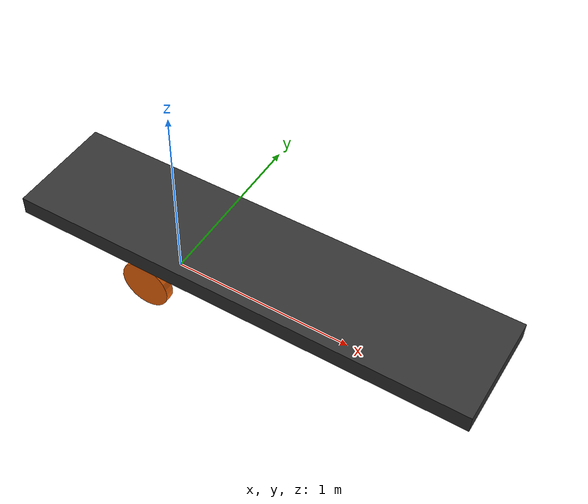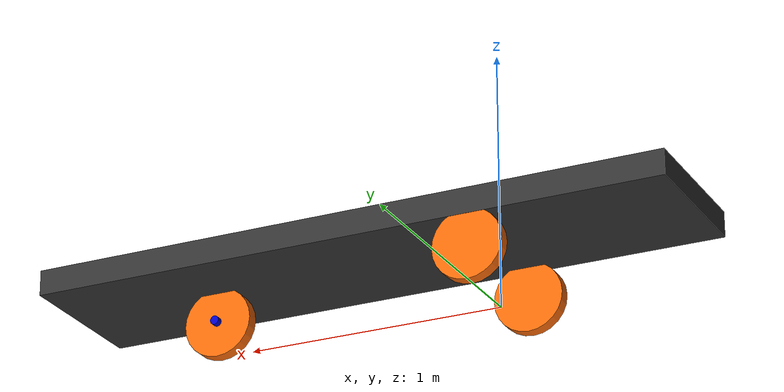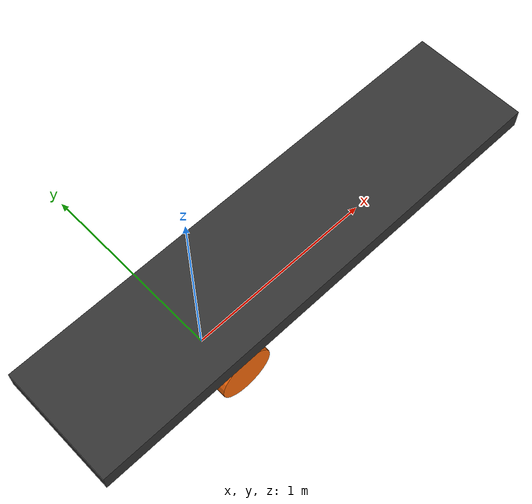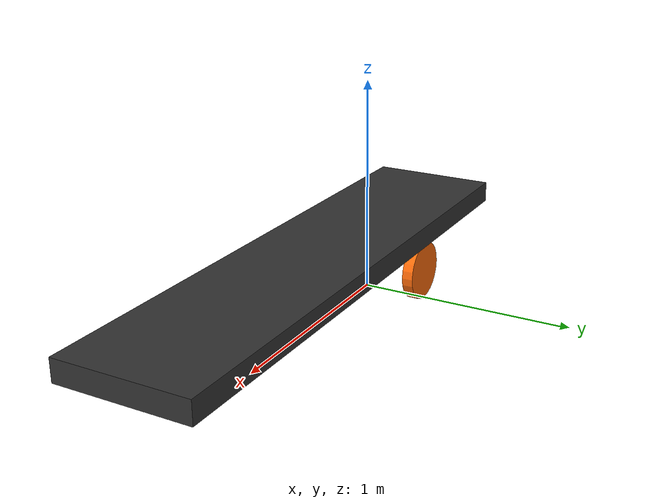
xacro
<?xml version="1.0"?>
<robot name="tricycle_laser" xmlns:xacro="http://www.ros.org/wiki/xacro">
  <!-- Gazebo upstream tricycle (front steer + rear wheels): Ackermann-like kinematics -->
  <xacro:include filename="$(find gazebo_plugins)/test/tricycle_drive/xacro/materials.xacro"/>
  <xacro:include filename="$(find gazebo_plugins)/test/tricycle_drive/xacro/tricycle/tricycle_body.xacro"/>

  <!-- Override upstream tricycle_drive macro to use ground-truth odometry source (world) -->
  <xacro:macro name="tricycle_drive">
    <gazebo>
      <plugin name="tricycle_drive_controller" filename="libgazebo_ros_tricycle_drive.so">
        <robotNamespace>tricycle</robotNamespace>
        <publishWheelTF>false</publishWheelTF>
        <publishWheelJointState>true</publishWheelJointState>
        <alwaysOn>true</alwaysOn>

        <steeringJoint>front_steering_joint</steeringJoint>
        <actuatedWheelJoint>front_wheel_joint</actuatedWheelJoint>
        <encoderWheelLeftJoint>left_wheel_joint</encoderWheelLeftJoint>
        <encoderWheelRightJoint>right_wheel_joint</encoderWheelRightJoint>

        <actuatedWheelDiameter>0.135</actuatedWheelDiameter>
        <encoderWheelDiameter>0.135</encoderWheelDiameter>
        <encoderWheelSeparation>0.548</encoderWheelSeparation>

        <commandTopic>cmd_vel</commandTopic>
        <odometryTopic>odom</odometryTopic>
        <odometryFrame>odom</odometryFrame>
        <odometrySource>world</odometrySource>
        <robotBaseFrame>base_link</robotBaseFrame>

        <updateRate>30.0</updateRate>
        <wheelAcceleration>1.8</wheelAcceleration>
        <wheelDeceleration>5.0</wheelDeceleration>
        <wheelSpeedTolerance>0.05</wheelSpeedTolerance>
        <wheelTorque>20</wheelTorque>
        <steeringSpeed>0.6</steeringSpeed>
        <steeringAngleTolerance>0.02</steeringAngleTolerance>
      </plugin>
    </gazebo>
  </xacro:macro>

  <xacro:tricycle_body parent="base_link" meshes="package://gazebo_plugins/test/tricycle_drive/meshes/tricycle"/>

  <!-- Nicer Gazebo look (upstream model is default grey) -->
  <gazebo reference="chassis">
    <material>
      <ambient>0.9 0.45 0.1 1</ambient>
      <diffuse>0.95 0.5 0.12 1</diffuse>
      <specular>0.2 0.2 0.2 1</specular>
    </material>
  </gazebo>

  <!-- 2D planar laser on chassis -->
  <joint name="hokuyo_joint" type="fixed">
    <parent link="base_link"/>
    <child link="hokuyo_link"/>
    <origin xyz="0.85 0 0.28" rpy="0 0 0"/>
  </joint>
  <link name="hokuyo_link">
    <visual>
      <geometry><box size="0.06 0.06 0.04"/></geometry>
      <material name="black"><color rgba="0 0 0 1"/></material>
    </visual>
    <collision>
      <geometry><box size="0.06 0.06 0.04"/></geometry>
    </collision>
    <inertial>
      <mass value="0.1"/>
      <inertia ixx="0.0001" ixy="0" ixz="0" iyy="0.0001" iyz="0" izz="0.0001"/>
    </inertial>
  </link>
  <gazebo reference="hokuyo_link">
    <material>Gazebo/Black</material>
    <sensor type="ray" name="hokuyo_sensor">
      <pose>0 0 0 0 0 0</pose>
      <visualize>false</visualize>
      <update_rate>20</update_rate>
      <ray>
        <scan>
          <horizontal>
            <samples>720</samples>
            <resolution>1</resolution>
            <min_angle>-2.26889</min_angle>
            <max_angle>2.26889</max_angle>
          </horizontal>
        </scan>
        <range>
          <min>0.08</min>
          <max>25.0</max>
        </range>
      </ray>
      <plugin name="gazebo_ros_laser" filename="libgazebo_ros_laser.so">
        <topicName>/scan</topicName>
        <frameName>hokuyo_link</frameName>
      </plugin>
    </sensor>
  </gazebo>
</robot>

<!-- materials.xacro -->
<robot>

  <material name="black">
    <color rgba="0.0 0.0 0.0 1.0"/>
  </material>

  <material name="blue">
    <color rgba="0.0 0.0 0.8 1.0"/>
  </material>

  <material name="green">
    <color rgba="0.0 0.8 0.0 1.0"/>
  </material>

  <material name="grey">
    <color rgba="0.2 0.2 0.2 1.0"/>
  </material>

  <material name="orange">
    <color rgba="${255/255} ${108/255} ${10/255} 1.0"/>
  </material>

  <material name="brown">
    <color rgba="${222/255} ${207/255} ${195/255} 1.0"/>
  </material>

  <material name="red">
    <color rgba="0.8 0.0 0.0 1.0"/>
  </material>

  <material name="white">
    <color rgba="1.0 1.0 1.0 1.0"/>
  </material>

</robot>

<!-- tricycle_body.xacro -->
<robot xmlns:xacro="http://www.ros.org/wiki/xacro">
  <xacro:property name="M_PI" value="3.1415926535897931" />
  <xacro:property name="radius_actuated_wheel" value="0.135" />
  <xacro:property name="radius_encoder_wheel" value="0.135" />

  <xacro:include filename="inertia_tensors.xacro"/>
  <xacro:include filename="tricycle_chassis.xacro"/>
  <xacro:include filename="wheel.xacro"/>
  <xacro:include filename="wheel_actuated.xacro"/>
  <xacro:include filename="tricycle_plugins.xacro"/>

  <xacro:macro name="tricycle_body" params="parent meshes">

    <!-- base_link -->
    <link name="${parent}"/>

    <!-- Chassis -->
    <xacro:tricycle_chassis name="chassis" parent="${parent}" xyz="0.5 0 0.3" rpy="0 0 0"  meshes="${meshes}"/>

    <!-- Wheels  -->
    <xacro:wheel name="right"   parent="${parent}"  xyz="0.0   0.274 ${radius_encoder_wheel}" rpy="${-M_PI/2} 0 0" radius="${radius_encoder_wheel}" length="0.05" meshes="${meshes}"/>
    <xacro:wheel name="left"    parent="${parent}"  xyz="0.0  -0.274 ${radius_encoder_wheel}" rpy="${-M_PI/2} 0 0" radius="${radius_encoder_wheel}" length="0.05" meshes="${meshes}"/>
    <xacro:wheel_actuated name="front"  parent="${parent}"  xyz="1.14  0.0   ${radius_actuated_wheel}" rpy="${-M_PI/2} 0 0" radius="${radius_actuated_wheel}" length="0.05" meshes="${meshes}"/>

    <!-- Motor plugin -->
    <xacro:tricycle_drive />

  </xacro:macro>
</robot>

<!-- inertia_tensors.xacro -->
<!-- Thanks to Martin Guenther
  see https://github.com/uos/uos_tools/blob/fuerte/uos_common_urdf/common.xacro and
  see http://answers.gazebosim.org/question/4372/the-inertia-matrix-explained/ -->
<robot xmlns:xacro="http://ros.org/wiki/xacro">
  <xacro:property name="M_PI" value="3.1415926535897931" />

  <!-- see https://secure.wikimedia.org/wikipedia/en/wiki/List_of_moment_of_inertia_tensors -->

  <!-- #################### versions without origin #################### -->
  <xacro:macro name="sphere_inertial" params="radius mass">
    <inertial>
      <mass value="${mass}" />
      <origin xyz="0 0 0" />
      <inertia ixx="${0.4 * mass * radius * radius}" ixy="0.0" ixz="0.0"
        iyy="${0.4 * mass * radius * radius}" iyz="0.0"
        izz="${0.4 * mass * radius * radius}" />
    </inertial>
  </xacro:macro>

  <xacro:macro name="cylinder_inertial" params="radius length mass">
    <inertial>
      <mass value="${mass}" />
      <origin xyz="0 0 0" />
      <inertia ixx="${0.0833333 * mass * (3 * radius * radius + length * length)}" ixy="0.0" ixz="0.0"
        iyy="${0.0833333 * mass * (3 * radius * radius + length * length)}" iyz="0.0"
        izz="${0.5 * mass * radius * radius}" />
    </inertial>
  </xacro:macro>

  <xacro:macro name="box_inertial" params="x y z mass">
    <inertial>
      <mass value="${mass}" />
      <origin xyz="0 0 0" />
      <inertia ixx="${0.0833333 * mass * (y*y + z*z)}" ixy="0.0" ixz="0.0"
        iyy="${0.0833333 * mass * (x*x + z*z)}" iyz="0.0"
        izz="${0.0833333 * mass * (x*x + y*y)}" />
    </inertial>
  </xacro:macro>

  <!-- #################### versions with origin #################### -->
  <xacro:macro name="sphere_inertial_with_origin" params="radius mass *origin">
    <inertial>
      <mass value="${mass}" />
      <xacro:insert_block name="origin" />
      <inertia ixx="${0.4 * mass * radius * radius}" ixy="0.0" ixz="0.0"
        iyy="${0.4 * mass * radius * radius}" iyz="0.0"
        izz="${0.4 * mass * radius * radius}" />
    </inertial>
  </xacro:macro>

  <xacro:macro name="cylinder_inertial_with_origin" params="radius length mass *origin">
    <inertial>
      <mass value="${mass}" />
      <xacro:insert_block name="origin" />
      <inertia ixx="${0.0833333 * mass * (3 * radius * radius + length * length)}" ixy="0.0" ixz="0.0"
        iyy="${0.0833333 * mass * (3 * radius * radius + length * length)}" iyz="0.0"
        izz="${0.5 * mass * radius * radius}" />
    </inertial>
  </xacro:macro>

  <xacro:macro name="box_inertial_with_origin" params="x y z mass origin">
    <inertial>
      <mass value="${mass}" />
      <origin xyz="${origin}" />
      <inertia ixx="${0.0833333 * mass * (y*y + z*z)}" ixy="0.0" ixz="0.0"
        iyy="${0.0833333 * mass * (x*x + z*z)}" iyz="0.0"
        izz="${0.0833333 * mass * (x*x + y*y)}" />
    </inertial>
  </xacro:macro>

</robot>

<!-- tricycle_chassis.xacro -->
<robot xmlns:xacro="http://ros.org/wiki/xacro">
  <xacro:property name="M_PI" value="3.1415926535897931" />
  <xacro:property name="DX" value="2.500" />
  <xacro:property name="DY" value="0.60" />
  <xacro:property name="DZ" value="0.1" />

  <xacro:macro name="tricycle_chassis" params="name parent xyz rpy meshes">

  <!-- Chassis -->
  <joint name="${parent}_${name}_joint" type="fixed">
    <origin xyz="${xyz}" rpy="${rpy}"/>
    <parent link="${parent}"/>
    <child link="${name}"/>
  </joint>
  <link name="${name}">
    <visual name="${name}_visual">
      <geometry name="${name}_geometry">
        <box size="${DX} ${DY} ${DZ}"/>
      </geometry>
      <material name="grey"/>
    </visual>
    <collision>
      <geometry>
        <box size="${DX} ${DY} ${DZ}"/>
      </geometry>
    </collision>
    <xacro:box_inertial x="${DX}" y="${DY}"  z="${DZ}" mass="100.0"/>
  </link>

  <gazebo reference="${name}">
    <material value="Gazebo/Grey"/>
  </gazebo>

  </xacro:macro>

</robot>

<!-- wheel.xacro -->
<robot
  xmlns:xacro="http://ros.org/wiki/xacro">
  <xacro:property name="M_PI" value="3.1415926535897931" />

  <xacro:macro name="wheel" params="name parent xyz rpy radius length meshes">

  <!-- Wheel -->
  <joint name="${name}_wheel_joint" type="continuous">
    <origin xyz="${xyz}" rpy="${rpy}"/>
    <parent link="${parent}"/>
    <child link="${name}_wheel"/>
    <axis xyz="0 0 1"/>
    <anchor xyz="0 0 0"/>
    <limit effort="100" velocity="100" k_velocity="0"/>
    <joint_properties damping="0.0" friction="0.0"/>
  </joint>
  <link name="${name}_wheel">
    <visual name="${name}_wheel_visual">
      <origin xyz="0 0 0" rpy="0 0 0"/>
      <geometry name="{name}_wheel_geometry">
        <cylinder radius="${radius}" length="${length}"/>
      </geometry>
      <material name="orange"/>
    </visual>
    <collision>
      <origin xyz="0 0 0" rpy="0 0 0"/>
      <geometry>
        <cylinder radius="${radius}" length="${length}"/>
      </geometry>
    </collision>
    <xacro:cylinder_inertial radius="${radius}" length="${length}" mass="1.0" />
  </link>
  <gazebo reference="${name}_wheel">
    <material value="Gazebo/Wood"/>
  </gazebo>

  </xacro:macro>

</robot>

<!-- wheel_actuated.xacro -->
<robot xmlns:xacro="http://ros.org/wiki/xacro">
  <xacro:property name="M_PI" value="3.1415926535897931" />

  <xacro:macro name="wheel_actuated" params="name parent xyz rpy radius length meshes">

  <!-- steering joint -->
  <joint name="${name}_steering_joint" type="continuous">
    <origin xyz="${xyz}" rpy="${rpy}"/>
    <parent link="${parent}"/>
    <child link="${name}_steering"/>
    <axis xyz="0 1 0"/>
    <anchor xyz="0 0 0"/>
    <limit effort="100" velocity="100" k_velocity="0"/>
    <joint_properties damping="0.0" friction="0.0"/>
  </joint>
  <link name="${name}_steering">
    <visual name="${name}_visual">
      <origin xyz="0 0 0" rpy="0 0 0"/>
      <geometry name="${name}_geometry">
        <cylinder radius="${radius / 8.0}" length="${length * 2}"/>
      </geometry>
      <material name="blue"/>
    </visual>
    <xacro:cylinder_inertial radius="${radius / 8.0}" length="${length* 2}" mass="1.0" />
  </link>
  <gazebo reference="${name}_steering">
    <material value="Gazebo/Blue"/>
  </gazebo>

  <!-- wheel joint -->
  <xacro:wheel name="${name}"  parent="${name}_steering"  xyz="0 0 0" rpy="0 0 0" radius="${radius}" length="${length}" meshes="${meshes}"/>

  </xacro:macro>

</robot>
